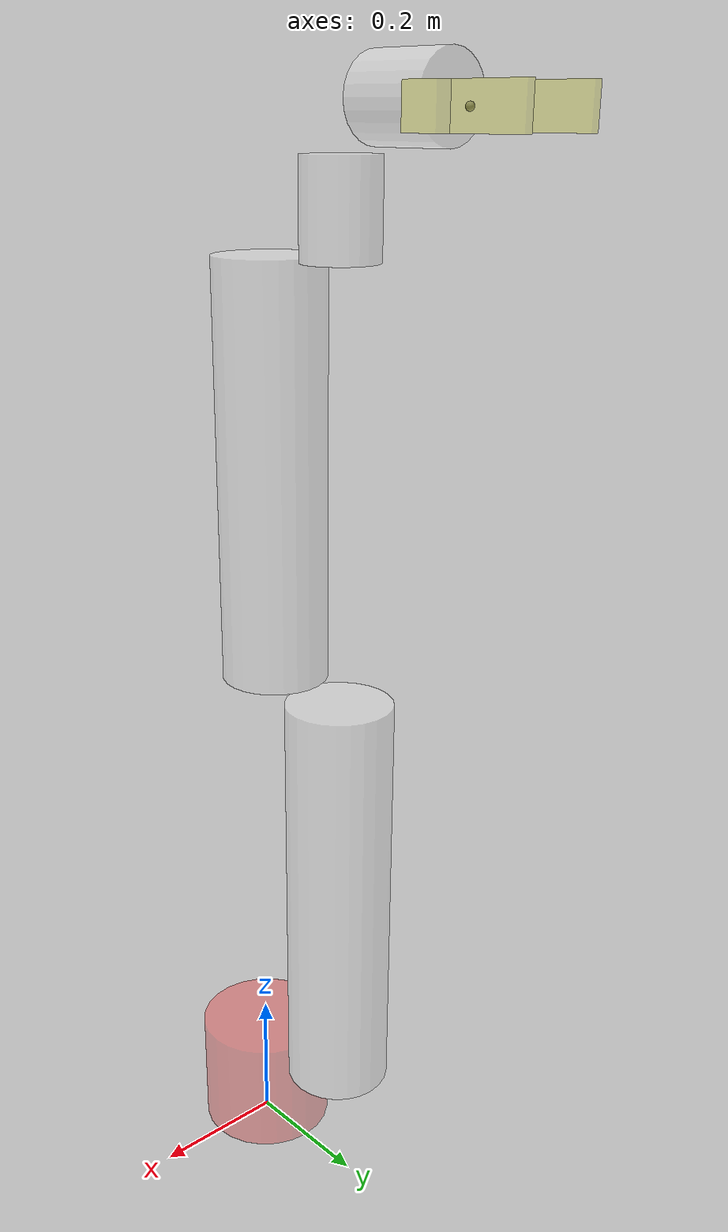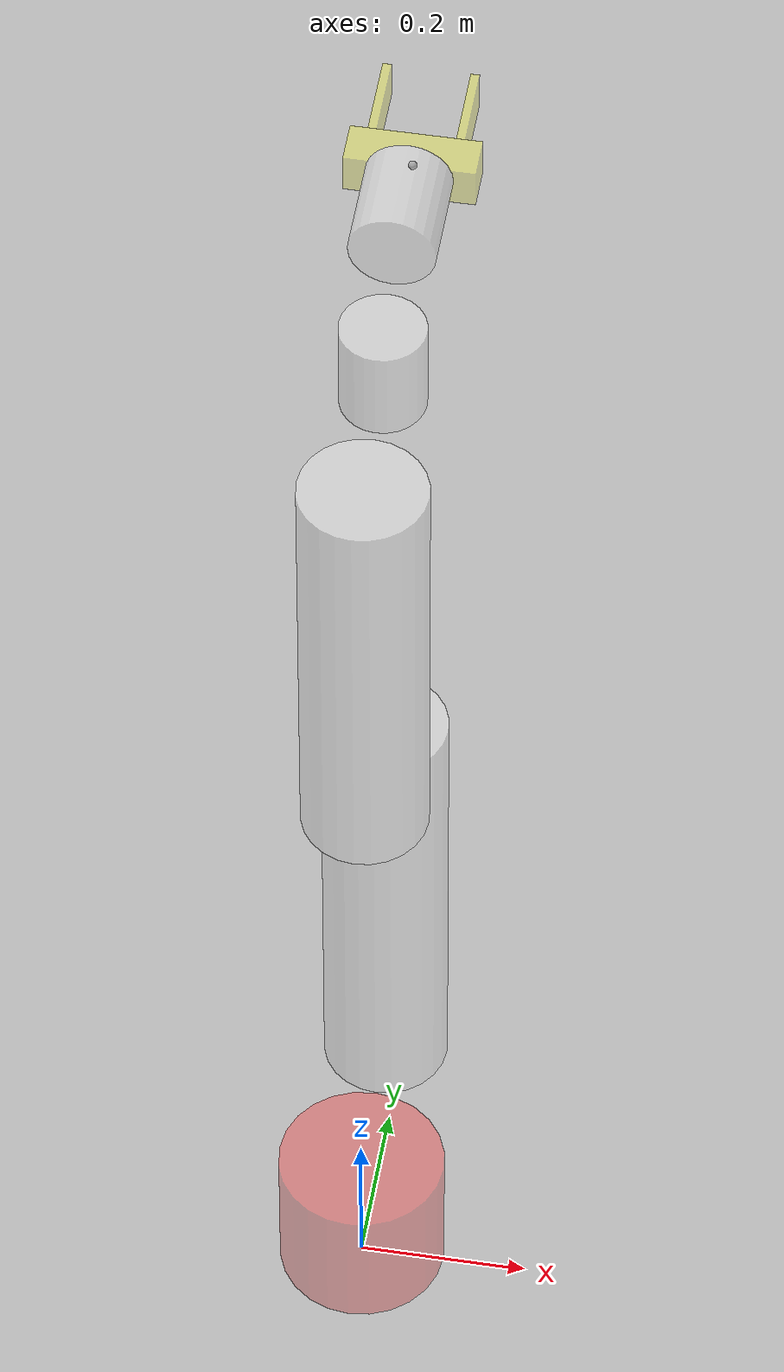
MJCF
<mujoco model="robot">
  <default>
    <default class="/"/>
    <default class="gripper/"/>
  </default>
  <worldbody>
    <body name="base">
      <joint name="robot:joint0" class="/" type="hinge" pos="0 0 0.090499999999999997" axis="0 0 1"/>
      <geom name="base" class="/" type="cylinder" size="0.10000000000000001 0.090499999999999997" rgba="1 0 0 0.29999999999999999" pos="0 0 0.090499999999999997"/>
      <body name="shoulder_link">
        <geom name="shoulder_link" class="/" type="cylinder" size="0.074999999999999997 0.30649999999999999" rgba="1 1 1 0.29999999999999999" pos="0 0.17599999999999999 0.48749999999999999"/>
        <joint name="robot:joint1" class="/" type="hinge" pos="0 0.17599999999999999 0.18099999999999999" axis="0 1 0"/>
        <body name="upper_arm_link">
          <geom name="upper_arm_link" class="/" type="cylinder" size="0.074999999999999997 0.28549999999999998" rgba="1 1 1 0.29999999999999999" pos="0 0.038999999999999979 1.0794999999999999"/>
          <joint name="robot:joint2" class="/" type="hinge" pos="0 0.038999999999999979 0.79400000000000004" axis="0 1 0"/>
          <body name="forearm_link">
            <geom name="forearm_link" class="/" type="cylinder" size="0.050000000000000003 0.059999999999999998" rgba="1 1 1 0.29999999999999999" pos="0 0.17399999999999999 1.425"/>
            <joint name="robot:joint3" class="/" type="hinge" pos="0 0.17399999999999999 1.365" axis="0 1 0"/>
            <body name="wrist_link">
              <geom name="wrist_link" class="/" type="cylinder" size="0.050000000000000003 0.058500000000000003" rgba="1 1 1 0.29999999999999999" pos="0 0.29099999999999998 1.5434999999999999" quat="-1 1 0 0"/>
              <joint name="robot:joint4" class="/" type="hinge" pos="0 0.17399999999999999 1.4849999999999999"/>
              <site name="wrist_link_site" class="/" pos="0 0.37461699999999998 1.5349999999999999" quat="-1 1 0 0"/>
              <body pos="0 0.37461699999999998 1.5349999999999999" quat="-1 1 0 0" name="gripper/">
                <body name="gripper/base">
                  <geom name="gripper/base" class="gripper/" type="box" size="0.074999999999999997 0.025000000000000001 0.025000000000000001" rgba="1 1 0 0.29999999999999999" pos="0 0 0"/>
                  <body name="gripper/finger_left">
                    <geom name="gripper/finger_left" class="gripper/" type="box" size="0.050000000000000003 0.025000000000000001 0.0050000000000000001" rgba="1 1 0 0.29999999999999999" pos="0.049999999999999996 0 0.075000000000000011" quat="1 0 -1 0"/>
                    <joint name="gripper/joint_left" class="gripper/" type="slide" pos="0 0 0.025000000000000001" axis="1 0 0" limited="true" range="-0.044999999999999998 0" damping="1.0"/>
                  </body>
                  <body name="gripper/finger_right">
                    <geom name="gripper/finger_right" class="gripper/" type="box" size="0.050000000000000003 0.025000000000000001 0.0050000000000000001" rgba="1 1 0 0.29999999999999999" pos="-0.049999999999999996 0 0.075000000000000011" quat="1 0 1 0"/>
                    <joint name="gripper/joint_right" class="gripper/" type="slide" pos="0 0 0.025000000000000001" axis="1 0 0" limited="true" range="0 0.044999999999999998" damping="1.0"/>
                  </body>
                </body>
              </body>
            </body>
          </body>
        </body>
      </body>
    </body>
  </worldbody>
</mujoco>
